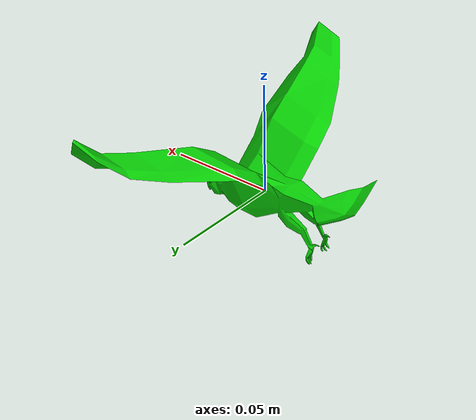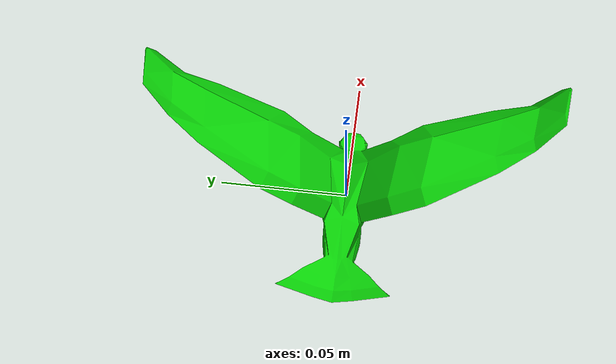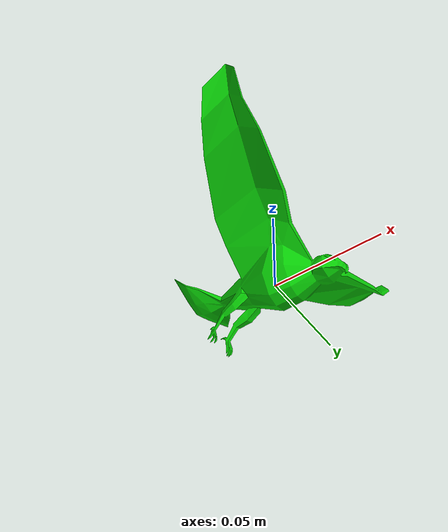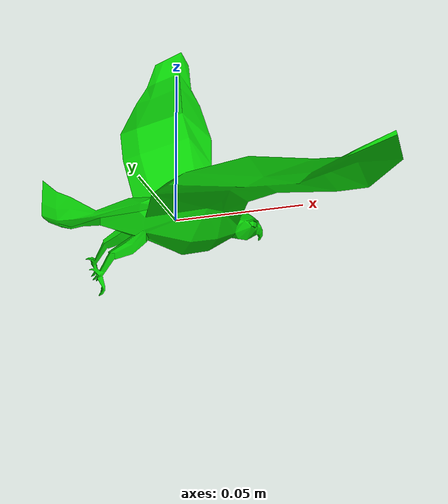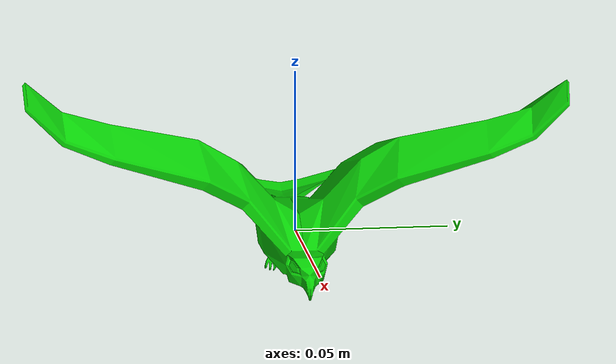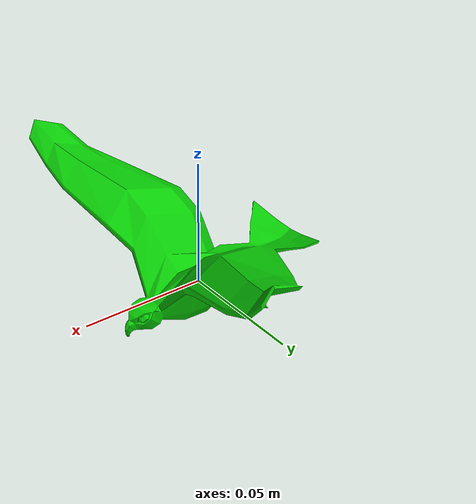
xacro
<?xml version="1.0"?>

<robot xmlns:xacro="http://www.ros.org/wiki/xacro">

  <!-- Bird link-->
  <xacro:macro name="bird_macro">
    <link name="base_link">
      <inertial>
        <mass value="0.002" />
        <origin xyz="0 0 0" />
        <inertia ixx="0.002" ixy="0.0" ixz="0.0" iyy="0.002" iyz="0.0" izz="0.002" />
      </inertial>

      <visual>
        <origin xyz="0 0 0" rpy="0 0 0" />
        <geometry>
          <mesh filename="package://boid_description/meshes/bird.dae"/>
        </geometry>
      </visual>

    </link>
  </xacro:macro>

  <xacro:bird_macro />
</robot>
